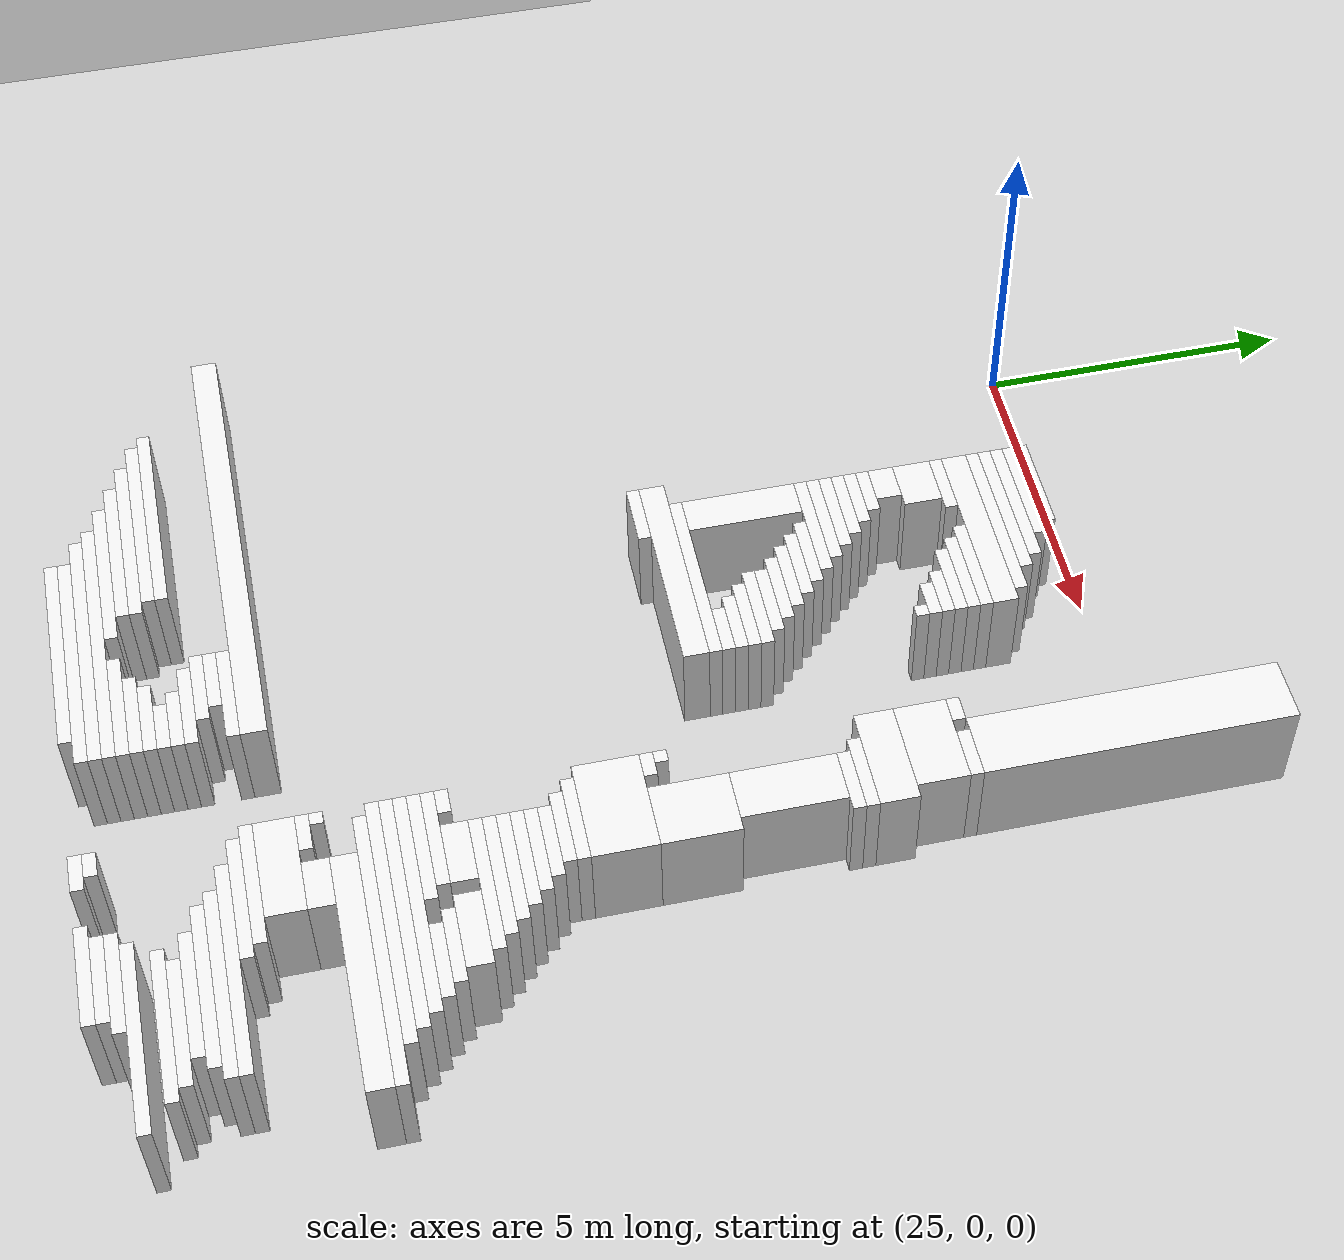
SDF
<sdf version="1.7">
 <world name="default">
  <model name="ground_plane">
   <static>1</static>
   <link name="link">
    <collision name="collision">
     <geometry><plane><normal>0 0 1</normal><size>120 120</size></plane></geometry>
    </collision>
    <visual name="visual">
     <geometry><plane><normal>0 0 1</normal><size>120 120</size></plane></geometry>
     <material>
      <script><uri>file://media/materials/scripts/gazebo.material</uri><name>Gazebo/Grey</name></script>
     </material>
    </visual>
   </link>
  </model>
  <model name="random_complex_01_model">
   <static>1</static>
   <link name="obs_1866">
    <pose>28.6000 -0.5000 0.8000 0 0 0</pose>
    <collision name="obs_1866_col"><geometry><box><size>1.6000 0.2000 1.6000</size></box></geometry></collision>
    <visual name="obs_1866_vis">
     <geometry><box><size>1.6000 0.2000 1.6000</size></box></geometry>
     <material>
      <script><uri>file://media/materials/scripts/gazebo.material</uri><name>Gazebo/White</name></script>
     </material>
    </visual>
   </link>
   <link name="obs_1874">
    <pose>28.7000 -0.7000 0.8000 0 0 0</pose>
    <collision name="obs_1874_col"><geometry><box><size>1.8000 0.2000 1.6000</size></box></geometry></collision>
    <visual name="obs_1874_vis">
     <geometry><box><size>1.8000 0.2000 1.6000</size></box></geometry>
     <material>
      <script><uri>file://media/materials/scripts/gazebo.material</uri><name>Gazebo/White</name></script>
     </material>
    </visual>
   </link>
   <link name="obs_1879">
    <pose>28.9000 -0.9000 0.8000 0 0 0</pose>
    <collision name="obs_1879_col"><geometry><box><size>2.2000 0.2000 1.6000</size></box></geometry></collision>
    <visual name="obs_1879_vis">
     <geometry><box><size>2.2000 0.2000 1.6000</size></box></geometry>
     <material>
      <script><uri>file://media/materials/scripts/gazebo.material</uri><name>Gazebo/White</name></script>
     </material>
    </visual>
   </link>
   <link name="obs_1886">
    <pose>29.0000 -1.1000 0.8000 0 0 0</pose>
    <collision name="obs_1886_col"><geometry><box><size>2.4000 0.2000 1.6000</size></box></geometry></collision>
    <visual name="obs_1886_vis">
     <geometry><box><size>2.4000 0.2000 1.6000</size></box></geometry>
     <material>
      <script><uri>file://media/materials/scripts/gazebo.material</uri><name>Gazebo/White</name></script>
     </material>
    </visual>
   </link>
   <link name="obs_1893">
    <pose>29.2000 -1.3000 0.8000 0 0 0</pose>
    <collision name="obs_1893_col"><geometry><box><size>2.8000 0.2000 1.6000</size></box></geometry></collision>
    <visual name="obs_1893_vis">
     <geometry><box><size>2.8000 0.2000 1.6000</size></box></geometry>
     <material>
      <script><uri>file://media/materials/scripts/gazebo.material</uri><name>Gazebo/White</name></script>
     </material>
    </visual>
   </link>
   <link name="obs_1902">
    <pose>29.3000 -1.6000 0.8000 0 0 0</pose>
    <collision name="obs_1902_col"><geometry><box><size>3.0000 0.4000 1.6000</size></box></geometry></collision>
    <visual name="obs_1902_vis">
     <geometry><box><size>3.0000 0.4000 1.6000</size></box></geometry>
     <material>
      <script><uri>file://media/materials/scripts/gazebo.material</uri><name>Gazebo/White</name></script>
     </material>
    </visual>
   </link>
   <link name="obs_1911">
    <pose>28.3000 -1.9000 0.8000 0 0 0</pose>
    <collision name="obs_1911_col"><geometry><box><size>1.0000 0.2000 1.6000</size></box></geometry></collision>
    <visual name="obs_1911_vis">
     <geometry><box><size>1.0000 0.2000 1.6000</size></box></geometry>
     <material>
      <script><uri>file://media/materials/scripts/gazebo.material</uri><name>Gazebo/White</name></script>
     </material>
    </visual>
   </link>
   <link name="obs_1912">
    <pose>30.0000 -1.9000 0.8000 0 0 0</pose>
    <collision name="obs_1912_col"><geometry><box><size>1.6000 0.2000 1.6000</size></box></geometry></collision>
    <visual name="obs_1912_vis">
     <geometry><box><size>1.6000 0.2000 1.6000</size></box></geometry>
     <material>
      <script><uri>file://media/materials/scripts/gazebo.material</uri><name>Gazebo/White</name></script>
     </material>
    </visual>
   </link>
   <link name="obs_1919">
    <pose>30.1000 -2.1000 0.8000 0 0 0</pose>
    <collision name="obs_1919_col"><geometry><box><size>1.4000 0.2000 1.6000</size></box></geometry></collision>
    <visual name="obs_1919_vis">
     <geometry><box><size>1.4000 0.2000 1.6000</size></box></geometry>
     <material>
      <script><uri>file://media/materials/scripts/gazebo.material</uri><name>Gazebo/White</name></script>
     </material>
    </visual>
   </link>
   <link name="obs_1927">
    <pose>30.2000 -2.3000 0.8000 0 0 0</pose>
    <collision name="obs_1927_col"><geometry><box><size>1.2000 0.2000 1.6000</size></box></geometry></collision>
    <visual name="obs_1927_vis">
     <geometry><box><size>1.2000 0.2000 1.6000</size></box></geometry>
     <material>
      <script><uri>file://media/materials/scripts/gazebo.material</uri><name>Gazebo/White</name></script>
     </material>
    </visual>
   </link>
   <link name="obs_1929">
    <pose>28.2000 -2.3000 0.8000 0 0 0</pose>
    <collision name="obs_1929_col"><geometry><box><size>0.8000 0.6000 1.6000</size></box></geometry></collision>
    <visual name="obs_1929_vis">
     <geometry><box><size>0.8000 0.6000 1.6000</size></box></geometry>
     <material>
      <script><uri>file://media/materials/scripts/gazebo.material</uri><name>Gazebo/White</name></script>
     </material>
    </visual>
   </link>
   <link name="obs_1934">
    <pose>30.4000 -2.5000 0.8000 0 0 0</pose>
    <collision name="obs_1934_col"><geometry><box><size>0.8000 0.2000 1.6000</size></box></geometry></collision>
    <visual name="obs_1934_vis">
     <geometry><box><size>0.8000 0.2000 1.6000</size></box></geometry>
     <material>
      <script><uri>file://media/materials/scripts/gazebo.material</uri><name>Gazebo/White</name></script>
     </material>
    </visual>
   </link>
   <link name="obs_1936">
    <pose>33.3000 -0.4000 0.8000 0 0 0</pose>
    <collision name="obs_1936_col"><geometry><box><size>1.0000 4.8000 1.6000</size></box></geometry></collision>
    <visual name="obs_1936_vis">
     <geometry><box><size>1.0000 4.8000 1.6000</size></box></geometry>
     <material>
      <script><uri>file://media/materials/scripts/gazebo.material</uri><name>Gazebo/White</name></script>
     </material>
    </visual>
   </link>
   <link name="obs_1942">
    <pose>30.5000 -2.7000 0.8000 0 0 0</pose>
    <collision name="obs_1942_col"><geometry><box><size>0.6000 0.2000 1.6000</size></box></geometry></collision>
    <visual name="obs_1942_vis">
     <geometry><box><size>0.6000 0.2000 1.6000</size></box></geometry>
     <material>
      <script><uri>file://media/materials/scripts/gazebo.material</uri><name>Gazebo/White</name></script>
     </material>
    </visual>
   </link>
   <link name="obs_1946">
    <pose>28.1000 -2.8000 0.8000 0 0 0</pose>
    <collision name="obs_1946_col"><geometry><box><size>0.6000 0.4000 1.6000</size></box></geometry></collision>
    <visual name="obs_1946_vis">
     <geometry><box><size>0.6000 0.4000 1.6000</size></box></geometry>
     <material>
      <script><uri>file://media/materials/scripts/gazebo.material</uri><name>Gazebo/White</name></script>
     </material>
    </visual>
   </link>
   <link name="obs_1952">
    <pose>30.7000 -2.9000 0.8000 0 0 0</pose>
    <collision name="obs_1952_col"><geometry><box><size>0.2000 0.2000 1.6000</size></box></geometry></collision>
    <visual name="obs_1952_vis">
     <geometry><box><size>0.2000 0.2000 1.6000</size></box></geometry>
     <material>
      <script><uri>file://media/materials/scripts/gazebo.material</uri><name>Gazebo/White</name></script>
     </material>
    </visual>
   </link>
   <link name="obs_1953">
    <pose>32.6000 -2.9000 0.8000 0 0 0</pose>
    <collision name="obs_1953_col"><geometry><box><size>0.4000 0.2000 1.6000</size></box></geometry></collision>
    <visual name="obs_1953_vis">
     <geometry><box><size>0.4000 0.2000 1.6000</size></box></geometry>
     <material>
      <script><uri>file://media/materials/scripts/gazebo.material</uri><name>Gazebo/White</name></script>
     </material>
    </visual>
   </link>
   <link name="obs_1954">
    <pose>33.4000 -2.9000 0.8000 0 0 0</pose>
    <collision name="obs_1954_col"><geometry><box><size>0.8000 0.2000 1.6000</size></box></geometry></collision>
    <visual name="obs_1954_vis">
     <geometry><box><size>0.8000 0.2000 1.6000</size></box></geometry>
     <material>
      <script><uri>file://media/materials/scripts/gazebo.material</uri><name>Gazebo/White</name></script>
     </material>
    </visual>
   </link>
   <link name="obs_1960">
    <pose>28.2000 -3.1000 0.8000 0 0 0</pose>
    <collision name="obs_1960_col"><geometry><box><size>0.8000 0.2000 1.6000</size></box></geometry></collision>
    <visual name="obs_1960_vis">
     <geometry><box><size>0.8000 0.2000 1.6000</size></box></geometry>
     <material>
      <script><uri>file://media/materials/scripts/gazebo.material</uri><name>Gazebo/White</name></script>
     </material>
    </visual>
   </link>
   <link name="obs_1965">
    <pose>28.3000 -3.3000 0.8000 0 0 0</pose>
    <collision name="obs_1965_col"><geometry><box><size>1.0000 0.2000 1.6000</size></box></geometry></collision>
    <visual name="obs_1965_vis">
     <geometry><box><size>1.0000 0.2000 1.6000</size></box></geometry>
     <material>
      <script><uri>file://media/materials/scripts/gazebo.material</uri><name>Gazebo/White</name></script>
     </material>
    </visual>
   </link>
   <link name="obs_1972">
    <pose>28.4000 -3.5000 0.8000 0 0 0</pose>
    <collision name="obs_1972_col"><geometry><box><size>1.2000 0.2000 1.6000</size></box></geometry></collision>
    <visual name="obs_1972_vis">
     <geometry><box><size>1.2000 0.2000 1.6000</size></box></geometry>
     <material>
      <script><uri>file://media/materials/scripts/gazebo.material</uri><name>Gazebo/White</name></script>
     </material>
    </visual>
   </link>
   <link name="obs_1976">
    <pose>33.1000 -3.4000 0.8000 0 0 0</pose>
    <collision name="obs_1976_col"><geometry><box><size>1.4000 0.8000 1.6000</size></box></geometry></collision>
    <visual name="obs_1976_vis">
     <geometry><box><size>1.4000 0.8000 1.6000</size></box></geometry>
     <material>
      <script><uri>file://media/materials/scripts/gazebo.material</uri><name>Gazebo/White</name></script>
     </material>
    </visual>
   </link>
   <link name="obs_1982">
    <pose>28.5000 -3.7000 0.8000 0 0 0</pose>
    <collision name="obs_1982_col"><geometry><box><size>1.4000 0.2000 1.6000</size></box></geometry></collision>
    <visual name="obs_1982_vis">
     <geometry><box><size>1.4000 0.2000 1.6000</size></box></geometry>
     <material>
      <script><uri>file://media/materials/scripts/gazebo.material</uri><name>Gazebo/White</name></script>
     </material>
    </visual>
   </link>
   <link name="obs_1992">
    <pose>28.6000 -3.9000 0.8000 0 0 0</pose>
    <collision name="obs_1992_col"><geometry><box><size>1.6000 0.2000 1.6000</size></box></geometry></collision>
    <visual name="obs_1992_vis">
     <geometry><box><size>1.6000 0.2000 1.6000</size></box></geometry>
     <material>
      <script><uri>file://media/materials/scripts/gazebo.material</uri><name>Gazebo/White</name></script>
     </material>
    </visual>
   </link>
   <link name="obs_2002">
    <pose>28.7000 -4.1000 0.8000 0 0 0</pose>
    <collision name="obs_2002_col"><geometry><box><size>1.8000 0.2000 1.6000</size></box></geometry></collision>
    <visual name="obs_2002_vis">
     <geometry><box><size>1.8000 0.2000 1.6000</size></box></geometry>
     <material>
      <script><uri>file://media/materials/scripts/gazebo.material</uri><name>Gazebo/White</name></script>
     </material>
    </visual>
   </link>
   <link name="obs_2005">
    <pose>33.2000 -4.1000 0.8000 0 0 0</pose>
    <collision name="obs_2005_col"><geometry><box><size>1.6000 0.6000 1.6000</size></box></geometry></collision>
    <visual name="obs_2005_vis">
     <geometry><box><size>1.6000 0.6000 1.6000</size></box></geometry>
     <material>
      <script><uri>file://media/materials/scripts/gazebo.material</uri><name>Gazebo/White</name></script>
     </material>
    </visual>
   </link>
   <link name="obs_2013">
    <pose>29.2000 -4.3000 0.8000 0 0 0</pose>
    <collision name="obs_2013_col"><geometry><box><size>1.2000 0.2000 1.6000</size></box></geometry></collision>
    <visual name="obs_2013_vis">
     <geometry><box><size>1.2000 0.2000 1.6000</size></box></geometry>
     <material>
      <script><uri>file://media/materials/scripts/gazebo.material</uri><name>Gazebo/White</name></script>
     </material>
    </visual>
   </link>
   <link name="obs_2024">
    <pose>29.4000 -4.5000 0.8000 0 0 0</pose>
    <collision name="obs_2024_col"><geometry><box><size>1.2000 0.2000 1.6000</size></box></geometry></collision>
    <visual name="obs_2024_vis">
     <geometry><box><size>1.2000 0.2000 1.6000</size></box></geometry>
     <material>
      <script><uri>file://media/materials/scripts/gazebo.material</uri><name>Gazebo/White</name></script>
     </material>
    </visual>
   </link>
   <link name="obs_2025">
    <pose>33.4000 -4.5000 0.8000 0 0 0</pose>
    <collision name="obs_2025_col"><geometry><box><size>1.2000 0.2000 1.6000</size></box></geometry></collision>
    <visual name="obs_2025_vis">
     <geometry><box><size>1.2000 0.2000 1.6000</size></box></geometry>
     <material>
      <script><uri>file://media/materials/scripts/gazebo.material</uri><name>Gazebo/White</name></script>
     </material>
    </visual>
   </link>
   <link name="obs_2033">
    <pose>29.6000 -4.7000 0.8000 0 0 0</pose>
    <collision name="obs_2033_col"><geometry><box><size>1.2000 0.2000 1.6000</size></box></geometry></collision>
    <visual name="obs_2033_vis">
     <geometry><box><size>1.2000 0.2000 1.6000</size></box></geometry>
     <material>
      <script><uri>file://media/materials/scripts/gazebo.material</uri><name>Gazebo/White</name></script>
     </material>
    </visual>
   </link>
   <link name="obs_2034">
    <pose>33.5000 -4.7000 0.8000 0 0 0</pose>
    <collision name="obs_2034_col"><geometry><box><size>1.0000 0.2000 1.6000</size></box></geometry></collision>
    <visual name="obs_2034_vis">
     <geometry><box><size>1.0000 0.2000 1.6000</size></box></geometry>
     <material>
      <script><uri>file://media/materials/scripts/gazebo.material</uri><name>Gazebo/White</name></script>
     </material>
    </visual>
   </link>
   <link name="obs_2040">
    <pose>29.8000 -4.9000 0.8000 0 0 0</pose>
    <collision name="obs_2040_col"><geometry><box><size>1.2000 0.2000 1.6000</size></box></geometry></collision>
    <visual name="obs_2040_vis">
     <geometry><box><size>1.2000 0.2000 1.6000</size></box></geometry>
     <material>
      <script><uri>file://media/materials/scripts/gazebo.material</uri><name>Gazebo/White</name></script>
     </material>
    </visual>
   </link>
   <link name="obs_2047">
    <pose>30.0000 -5.1000 0.8000 0 0 0</pose>
    <collision name="obs_2047_col"><geometry><box><size>1.2000 0.2000 1.6000</size></box></geometry></collision>
    <visual name="obs_2047_vis">
     <geometry><box><size>1.2000 0.2000 1.6000</size></box></geometry>
     <material>
      <script><uri>file://media/materials/scripts/gazebo.material</uri><name>Gazebo/White</name></script>
     </material>
    </visual>
   </link>
   <link name="obs_2053">
    <pose>30.1000 -5.3000 0.8000 0 0 0</pose>
    <collision name="obs_2053_col"><geometry><box><size>1.4000 0.2000 1.6000</size></box></geometry></collision>
    <visual name="obs_2053_vis">
     <geometry><box><size>1.4000 0.2000 1.6000</size></box></geometry>
     <material>
      <script><uri>file://media/materials/scripts/gazebo.material</uri><name>Gazebo/White</name></script>
     </material>
    </visual>
   </link>
   <link name="obs_2059">
    <pose>30.2000 -5.5000 0.8000 0 0 0</pose>
    <collision name="obs_2059_col"><geometry><box><size>1.2000 0.2000 1.6000</size></box></geometry></collision>
    <visual name="obs_2059_vis">
     <geometry><box><size>1.2000 0.2000 1.6000</size></box></geometry>
     <material>
      <script><uri>file://media/materials/scripts/gazebo.material</uri><name>Gazebo/White</name></script>
     </material>
    </visual>
   </link>
   <link name="obs_2068">
    <pose>30.3000 -5.7000 0.8000 0 0 0</pose>
    <collision name="obs_2068_col"><geometry><box><size>1.0000 0.2000 1.6000</size></box></geometry></collision>
    <visual name="obs_2068_vis">
     <geometry><box><size>1.0000 0.2000 1.6000</size></box></geometry>
     <material>
      <script><uri>file://media/materials/scripts/gazebo.material</uri><name>Gazebo/White</name></script>
     </material>
    </visual>
   </link>
   <link name="obs_2070">
    <pose>28.1000 -5.1000 0.8000 0 0 0</pose>
    <collision name="obs_2070_col"><geometry><box><size>0.6000 1.8000 1.6000</size></box></geometry></collision>
    <visual name="obs_2070_vis">
     <geometry><box><size>0.6000 1.8000 1.6000</size></box></geometry>
     <material>
      <script><uri>file://media/materials/scripts/gazebo.material</uri><name>Gazebo/White</name></script>
     </material>
    </visual>
   </link>
   <link name="obs_2078">
    <pose>30.4000 -5.9000 0.8000 0 0 0</pose>
    <collision name="obs_2078_col"><geometry><box><size>0.8000 0.2000 1.6000</size></box></geometry></collision>
    <visual name="obs_2078_vis">
     <geometry><box><size>0.8000 0.2000 1.6000</size></box></geometry>
     <material>
      <script><uri>file://media/materials/scripts/gazebo.material</uri><name>Gazebo/White</name></script>
     </material>
    </visual>
   </link>
   <link name="obs_2082">
    <pose>29.3000 -6.1000 0.8000 0 0 0</pose>
    <collision name="obs_2082_col"><geometry><box><size>3.0000 0.2000 1.6000</size></box></geometry></collision>
    <visual name="obs_2082_vis">
     <geometry><box><size>3.0000 0.2000 1.6000</size></box></geometry>
     <material>
      <script><uri>file://media/materials/scripts/gazebo.material</uri><name>Gazebo/White</name></script>
     </material>
    </visual>
   </link>
   <link name="obs_2084">
    <pose>33.4000 -5.6000 0.8000 0 0 0</pose>
    <collision name="obs_2084_col"><geometry><box><size>0.8000 1.6000 1.6000</size></box></geometry></collision>
    <visual name="obs_2084_vis">
     <geometry><box><size>0.8000 1.6000 1.6000</size></box></geometry>
     <material>
      <script><uri>file://media/materials/scripts/gazebo.material</uri><name>Gazebo/White</name></script>
     </material>
    </visual>
   </link>
   <link name="obs_2093">
    <pose>29.1000 -6.4000 0.8000 0 0 0</pose>
    <collision name="obs_2093_col"><geometry><box><size>3.4000 0.4000 1.6000</size></box></geometry></collision>
    <visual name="obs_2093_vis">
     <geometry><box><size>3.4000 0.4000 1.6000</size></box></geometry>
     <material>
      <script><uri>file://media/materials/scripts/gazebo.material</uri><name>Gazebo/White</name></script>
     </material>
    </visual>
   </link>
   <link name="obs_2107">
    <pose>27.9000 -6.7000 0.8000 0 0 0</pose>
    <collision name="obs_2107_col"><geometry><box><size>1.0000 0.2000 1.6000</size></box></geometry></collision>
    <visual name="obs_2107_vis">
     <geometry><box><size>1.0000 0.2000 1.6000</size></box></geometry>
     <material>
      <script><uri>file://media/materials/scripts/gazebo.material</uri><name>Gazebo/White</name></script>
     </material>
    </visual>
   </link>
   <link name="obs_2134">
    <pose>32.5000 -7.3000 0.8000 0 0 0</pose>
    <collision name="obs_2134_col"><geometry><box><size>0.2000 0.2000 1.6000</size></box></geometry></collision>
    <visual name="obs_2134_vis">
     <geometry><box><size>0.2000 0.2000 1.6000</size></box></geometry>
     <material>
      <script><uri>file://media/materials/scripts/gazebo.material</uri><name>Gazebo/White</name></script>
     </material>
    </visual>
   </link>
   <link name="obs_2136">
    <pose>33.5000 -7.0000 0.8000 0 0 0</pose>
    <collision name="obs_2136_col"><geometry><box><size>1.0000 1.2000 1.6000</size></box></geometry></collision>
    <visual name="obs_2136_vis">
     <geometry><box><size>1.0000 1.2000 1.6000</size></box></geometry>
     <material>
      <script><uri>file://media/materials/scripts/gazebo.material</uri><name>Gazebo/White</name></script>
     </material>
    </visual>
   </link>
   <link name="obs_2141">
    <pose>32.6000 -7.5000 0.8000 0 0 0</pose>
    <collision name="obs_2141_col"><geometry><box><size>0.4000 0.2000 1.6000</size></box></geometry></collision>
    <visual name="obs_2141_vis">
     <geometry><box><size>0.4000 0.2000 1.6000</size></box></geometry>
     <material>
      <script><uri>file://media/materials/scripts/gazebo.material</uri><name>Gazebo/White</name></script>
     </material>
    </visual>
   </link>
   <link name="obs_2168">
    <pose>33.2000 -8.1000 0.8000 0 0 0</pose>
    <collision name="obs_2168_col"><geometry><box><size>1.6000 1.0000 1.6000</size></box></geometry></collision>
    <visual name="obs_2168_vis">
     <geometry><box><size>1.6000 1.0000 1.6000</size></box></geometry>
     <material>
      <script><uri>file://media/materials/scripts/gazebo.material</uri><name>Gazebo/White</name></script>
     </material>
    </visual>
   </link>
   <link name="obs_2182">
    <pose>33.3000 -8.7000 0.8000 0 0 0</pose>
    <collision name="obs_2182_col"><geometry><box><size>1.4000 0.2000 1.6000</size></box></geometry></collision>
    <visual name="obs_2182_vis">
     <geometry><box><size>1.4000 0.2000 1.6000</size></box></geometry>
     <material>
      <script><uri>file://media/materials/scripts/gazebo.material</uri><name>Gazebo/White</name></script>
     </material>
    </visual>
   </link>
   <link name="obs_2188">
    <pose>33.4000 -8.9000 0.8000 0 0 0</pose>
    <collision name="obs_2188_col"><geometry><box><size>1.2000 0.2000 1.6000</size></box></geometry></collision>
    <visual name="obs_2188_vis">
     <geometry><box><size>1.2000 0.2000 1.6000</size></box></geometry>
     <material>
      <script><uri>file://media/materials/scripts/gazebo.material</uri><name>Gazebo/White</name></script>
     </material>
    </visual>
   </link>
   <link name="obs_2193">
    <pose>33.6000 -9.1000 0.8000 0 0 0</pose>
    <collision name="obs_2193_col"><geometry><box><size>1.2000 0.2000 1.6000</size></box></geometry></collision>
    <visual name="obs_2193_vis">
     <geometry><box><size>1.2000 0.2000 1.6000</size></box></geometry>
     <material>
      <script><uri>file://media/materials/scripts/gazebo.material</uri><name>Gazebo/White</name></script>
     </material>
    </visual>
   </link>
   <link name="obs_2199">
    <pose>33.7000 -9.3000 0.8000 0 0 0</pose>
    <collision name="obs_2199_col"><geometry><box><size>1.4000 0.2000 1.6000</size></box></geometry></collision>
    <visual name="obs_2199_vis">
     <geometry><box><size>1.4000 0.2000 1.6000</size></box></geometry>
     <material>
      <script><uri>file://media/materials/scripts/gazebo.material</uri><name>Gazebo/White</name></script>
     </material>
    </visual>
   </link>
   <link name="obs_2206">
    <pose>33.8000 -9.5000 0.8000 0 0 0</pose>
    <collision name="obs_2206_col"><geometry><box><size>1.6000 0.2000 1.6000</size></box></geometry></collision>
    <visual name="obs_2206_vis">
     <geometry><box><size>1.6000 0.2000 1.6000</size></box></geometry>
     <material>
      <script><uri>file://media/materials/scripts/gazebo.material</uri><name>Gazebo/White</name></script>
     </material>
    </visual>
   </link>
   <link name="obs_2212">
    <pose>33.9000 -9.7000 0.8000 0 0 0</pose>
    <collision name="obs_2212_col"><geometry><box><size>1.8000 0.2000 1.6000</size></box></geometry></collision>
    <visual name="obs_2212_vis">
     <geometry><box><size>1.8000 0.2000 1.6000</size></box></geometry>
     <material>
      <script><uri>file://media/materials/scripts/gazebo.material</uri><name>Gazebo/White</name></script>
     </material>
    </visual>
   </link>
   <link name="obs_2218">
    <pose>34.0000 -9.9000 0.8000 0 0 0</pose>
    <collision name="obs_2218_col"><geometry><box><size>2.0000 0.2000 1.6000</size></box></geometry></collision>
    <visual name="obs_2218_vis">
     <geometry><box><size>2.0000 0.2000 1.6000</size></box></geometry>
     <material>
      <script><uri>file://media/materials/scripts/gazebo.material</uri><name>Gazebo/White</name></script>
     </material>
    </visual>
   </link>
   <link name="obs_2224">
    <pose>34.1000 -10.1000 0.8000 0 0 0</pose>
    <collision name="obs_2224_col"><geometry><box><size>2.2000 0.2000 1.6000</size></box></geometry></collision>
    <visual name="obs_2224_vis">
     <geometry><box><size>2.2000 0.2000 1.6000</size></box></geometry>
     <material>
      <script><uri>file://media/materials/scripts/gazebo.material</uri><name>Gazebo/White</name></script>
     </material>
    </visual>
   </link>
   <link name="obs_2231">
    <pose>33.5000 -10.4000 0.8000 0 0 0</pose>
    <collision name="obs_2231_col"><geometry><box><size>1.0000 0.4000 1.6000</size></box></geometry></collision>
    <visual name="obs_2231_vis">
     <geometry><box><size>1.0000 0.4000 1.6000</size></box></geometry>
     <material>
      <script><uri>file://media/materials/scripts/gazebo.material</uri><name>Gazebo/White</name></script>
     </material>
    </visual>
   </link>
   <link name="obs_2232">
    <pose>34.8000 -10.4000 0.8000 0 0 0</pose>
    <collision name="obs_2232_col"><geometry><box><size>1.2000 0.4000 1.6000</size></box></geometry></collision>
    <visual name="obs_2232_vis">
     <geometry><box><size>1.2000 0.4000 1.6000</size></box></geometry>
     <material>
      <script><uri>file://media/materials/scripts/gazebo.material</uri><name>Gazebo/White</name></script>
     </material>
    </visual>
   </link>
   <link name="obs_2236">
    <pose>32.6000 -10.5000 0.8000 0 0 0</pose>
    <collision name="obs_2236_col"><geometry><box><size>0.4000 0.2000 1.6000</size></box></geometry></collision>
    <visual name="obs_2236_vis">
     <geometry><box><size>0.4000 0.2000 1.6000</size></box></geometry>
     <material>
      <script><uri>file://media/materials/scripts/gazebo.material</uri><name>Gazebo/White</name></script>
     </material>
    </visual>
   </link>
   <link name="obs_2242">
    <pose>33.2000 -10.7000 0.8000 0 0 0</pose>
    <collision name="obs_2242_col"><geometry><box><size>1.6000 0.2000 1.6000</size></box></geometry></collision>
    <visual name="obs_2242_vis">
     <geometry><box><size>1.6000 0.2000 1.6000</size></box></geometry>
     <material>
      <script><uri>file://media/materials/scripts/gazebo.material</uri><name>Gazebo/White</name></script>
     </material>
    </visual>
   </link>
   <link name="obs_2243">
    <pose>35.0000 -10.7000 0.8000 0 0 0</pose>
    <collision name="obs_2243_col"><geometry><box><size>1.2000 0.2000 1.6000</size></box></geometry></collision>
    <visual name="obs_2243_vis">
     <geometry><box><size>1.2000 0.2000 1.6000</size></box></geometry>
     <material>
      <script><uri>file://media/materials/scripts/gazebo.material</uri><name>Gazebo/White</name></script>
     </material>
    </visual>
   </link>
   <link name="obs_2251">
    <pose>33.3000 -10.9000 0.8000 0 0 0</pose>
    <collision name="obs_2251_col"><geometry><box><size>1.8000 0.2000 1.6000</size></box></geometry></collision>
    <visual name="obs_2251_vis">
     <geometry><box><size>1.8000 0.2000 1.6000</size></box></geometry>
     <material>
      <script><uri>file://media/materials/scripts/gazebo.material</uri><name>Gazebo/White</name></script>
     </material>
    </visual>
   </link>
   <link name="obs_2252">
    <pose>35.2000 -10.9000 0.8000 0 0 0</pose>
    <collision name="obs_2252_col"><geometry><box><size>1.2000 0.2000 1.6000</size></box></geometry></collision>
    <visual name="obs_2252_vis">
     <geometry><box><size>1.2000 0.2000 1.6000</size></box></geometry>
     <material>
      <script><uri>file://media/materials/scripts/gazebo.material</uri><name>Gazebo/White</name></script>
     </material>
    </visual>
   </link>
   <link name="obs_2260">
    <pose>34.2000 -11.1000 0.8000 0 0 0</pose>
    <collision name="obs_2260_col"><geometry><box><size>3.6000 0.2000 1.6000</size></box></geometry></collision>
    <visual name="obs_2260_vis">
     <geometry><box><size>3.6000 0.2000 1.6000</size></box></geometry>
     <material>
      <script><uri>file://media/materials/scripts/gazebo.material</uri><name>Gazebo/White</name></script>
     </material>
    </visual>
   </link>
   <link name="obs_2264">
    <pose>34.3000 -11.3000 0.8000 0 0 0</pose>
    <collision name="obs_2264_col"><geometry><box><size>3.8000 0.2000 1.6000</size></box></geometry></collision>
    <visual name="obs_2264_vis">
     <geometry><box><size>3.8000 0.2000 1.6000</size></box></geometry>
     <material>
      <script><uri>file://media/materials/scripts/gazebo.material</uri><name>Gazebo/White</name></script>
     </material>
    </visual>
   </link>
   <link name="obs_2269">
    <pose>34.4000 -11.5000 0.8000 0 0 0</pose>
    <collision name="obs_2269_col"><geometry><box><size>4.0000 0.2000 1.6000</size></box></geometry></collision>
    <visual name="obs_2269_vis">
     <geometry><box><size>4.0000 0.2000 1.6000</size></box></geometry>
     <material>
      <script><uri>file://media/materials/scripts/gazebo.material</uri><name>Gazebo/White</name></script>
     </material>
    </visual>
   </link>
   <link name="obs_2277">
    <pose>34.8000 -11.7000 0.8000 0 0 0</pose>
    <collision name="obs_2277_col"><geometry><box><size>4.4000 0.2000 1.6000</size></box></geometry></collision>
    <visual name="obs_2277_vis">
     <geometry><box><size>4.4000 0.2000 1.6000</size></box></geometry>
     <material>
      <script><uri>file://media/materials/scripts/gazebo.material</uri><name>Gazebo/White</name></script>
     </material>
    </visual>
   </link>
   <link name="obs_2287">
    <pose>35.1000 -12.0000 0.8000 0 0 0</pose>
    <collision name="obs_2287_col"><geometry><box><size>3.8000 0.4000 1.6000</size></box></geometry></collision>
    <visual name="obs_2287_vis">
     <geometry><box><size>3.8000 0.4000 1.6000</size></box></geometry>
     <material>
      <script><uri>file://media/materials/scripts/gazebo.material</uri><name>Gazebo/White</name></script>
     </material>
    </visual>
   </link>
   <link name="obs_2293">
    <pose>32.5000 -12.3000 0.8000 0 0 0</pose>
    <collision name="obs_2293_col"><geometry><box><size>0.2000 0.2000 1.6000</size></box></geometry></collision>
    <visual name="obs_2293_vis">
     <geometry><box><size>0.2000 0.2000 1.6000</size></box></geometry>
     <material>
      <script><uri>file://media/materials/scripts/gazebo.material</uri><name>Gazebo/White</name></script>
     </material>
    </visual>
   </link>
   <link name="obs_2301">
    <pose>33.6000 -12.4000 0.8000 0 0 0</pose>
    <collision name="obs_2301_col"><geometry><box><size>0.8000 0.4000 1.6000</size></box></geometry></collision>
    <visual name="obs_2301_vis">
     <geometry><box><size>0.8000 0.4000 1.6000</size></box></geometry>
     <material>
      <script><uri>file://media/materials/scripts/gazebo.material</uri><name>Gazebo/White</name></script>
     </material>
    </visual>
   </link>
   <link name="obs_2304">
    <pose>32.7000 -12.5000 0.8000 0 0 0</pose>
    <collision name="obs_2304_col"><geometry><box><size>0.6000 0.2000 1.6000</size></box></geometry></collision>
    <visual name="obs_2304_vis">
     <geometry><box><size>0.6000 0.2000 1.6000</size></box></geometry>
     <material>
      <script><uri>file://media/materials/scripts/gazebo.material</uri><name>Gazebo/White</name></script>
     </material>
    </visual>
   </link>
   <link name="obs_2318">
    <pose>33.2000 -12.9000 0.8000 0 0 0</pose>
    <collision name="obs_2318_col"><geometry><box><size>1.6000 0.6000 1.6000</size></box></geometry></collision>
    <visual name="obs_2318_vis">
     <geometry><box><size>1.6000 0.6000 1.6000</size></box></geometry>
     <material>
      <script><uri>file://media/materials/scripts/gazebo.material</uri><name>Gazebo/White</name></script>
     </material>
    </visual>
   </link>
   <link name="obs_2321">
    <pose>27.0000 -13.0000 0.8000 0 0 0</pose>
    <collision name="obs_2321_col"><geometry><box><size>7.6000 0.4000 1.6000</size></box></geometry></collision>
    <visual name="obs_2321_vis">
     <geometry><box><size>7.6000 0.4000 1.6000</size></box></geometry>
     <material>
      <script><uri>file://media/materials/scripts/gazebo.material</uri><name>Gazebo/White</name></script>
     </material>
    </visual>
   </link>
   <link name="obs_2327">
    <pose>30.0000 -13.3000 0.8000 0 0 0</pose>
    <collision name="obs_2327_col"><geometry><box><size>1.6000 0.2000 1.6000</size></box></geometry></collision>
    <visual name="obs_2327_vis">
     <geometry><box><size>1.6000 0.2000 1.6000</size></box></geometry>
     <material>
      <script><uri>file://media/materials/scripts/gazebo.material</uri><name>Gazebo/White</name></script>
     </material>
    </visual>
   </link>
   <link name="obs_2328">
    <pose>33.4000 -13.3000 0.8000 0 0 0</pose>
    <collision name="obs_2328_col"><geometry><box><size>2.0000 0.2000 1.6000</size></box></geometry></collision>
    <visual name="obs_2328_vis">
     <geometry><box><size>2.0000 0.2000 1.6000</size></box></geometry>
     <material>
      <script><uri>file://media/materials/scripts/gazebo.material</uri><name>Gazebo/White</name></script>
     </material>
    </visual>
   </link>
   <link name="obs_2335">
    <pose>29.7000 -13.5000 0.8000 0 0 0</pose>
    <collision name="obs_2335_col"><geometry><box><size>1.0000 0.2000 1.6000</size></box></geometry></collision>
    <visual name="obs_2335_vis">
     <geometry><box><size>1.0000 0.2000 1.6000</size></box></geometry>
     <material>
      <script><uri>file://media/materials/scripts/gazebo.material</uri><name>Gazebo/White</name></script>
     </material>
    </visual>
   </link>
   <link name="obs_2336">
    <pose>33.6000 -13.5000 0.8000 0 0 0</pose>
    <collision name="obs_2336_col"><geometry><box><size>2.0000 0.2000 1.6000</size></box></geometry></collision>
    <visual name="obs_2336_vis">
     <geometry><box><size>2.0000 0.2000 1.6000</size></box></geometry>
     <material>
      <script><uri>file://media/materials/scripts/gazebo.material</uri><name>Gazebo/White</name></script>
     </material>
    </visual>
   </link>
   <link name="obs_2343">
    <pose>29.8000 -13.7000 0.8000 0 0 0</pose>
    <collision name="obs_2343_col"><geometry><box><size>1.2000 0.2000 1.6000</size></box></geometry></collision>
    <visual name="obs_2343_vis">
     <geometry><box><size>1.2000 0.2000 1.6000</size></box></geometry>
     <material>
      <script><uri>file://media/materials/scripts/gazebo.material</uri><name>Gazebo/White</name></script>
     </material>
    </visual>
   </link>
   <link name="obs_2344">
    <pose>34.7000 -13.7000 0.8000 0 0 0</pose>
    <collision name="obs_2344_col"><geometry><box><size>3.4000 0.2000 1.6000</size></box></geometry></collision>
    <visual name="obs_2344_vis">
     <geometry><box><size>3.4000 0.2000 1.6000</size></box></geometry>
     <material>
      <script><uri>file://media/materials/scripts/gazebo.material</uri><name>Gazebo/White</name></script>
     </material>
    </visual>
   </link>
   <link name="obs_2350">
    <pose>30.1000 -13.9000 0.8000 0 0 0</pose>
    <collision name="obs_2350_col"><geometry><box><size>1.4000 0.2000 1.6000</size></box></geometry></collision>
    <visual name="obs_2350_vis">
     <geometry><box><size>1.4000 0.2000 1.6000</size></box></geometry>
     <material>
      <script><uri>file://media/materials/scripts/gazebo.material</uri><name>Gazebo/White</name></script>
     </material>
    </visual>
   </link>
   <link name="obs_2351">
    <pose>34.9000 -13.9000 0.8000 0 0 0</pose>
    <collision name="obs_2351_col"><geometry><box><size>3.0000 0.2000 1.6000</size></box></geometry></collision>
    <visual name="obs_2351_vis">
     <geometry><box><size>3.0000 0.2000 1.6000</size></box></geometry>
     <material>
      <script><uri>file://media/materials/scripts/gazebo.material</uri><name>Gazebo/White</name></script>
     </material>
    </visual>
   </link>
   <link name="obs_2355">
    <pose>26.3000 -14.1000 0.8000 0 0 0</pose>
    <collision name="obs_2355_col"><geometry><box><size>3.4000 0.2000 1.6000</size></box></geometry></collision>
    <visual name="obs_2355_vis">
     <geometry><box><size>3.4000 0.2000 1.6000</size></box></geometry>
     <material>
      <script><uri>file://media/materials/scripts/gazebo.material</uri><name>Gazebo/White</name></script>
     </material>
    </visual>
   </link>
   <link name="obs_2356">
    <pose>30.3000 -14.1000 0.8000 0 0 0</pose>
    <collision name="obs_2356_col"><geometry><box><size>1.0000 0.2000 1.6000</size></box></geometry></collision>
    <visual name="obs_2356_vis">
     <geometry><box><size>1.0000 0.2000 1.6000</size></box></geometry>
     <material>
      <script><uri>file://media/materials/scripts/gazebo.material</uri><name>Gazebo/White</name></script>
     </material>
    </visual>
   </link>
   <link name="obs_2357">
    <pose>34.9000 -14.1000 0.8000 0 0 0</pose>
    <collision name="obs_2357_col"><geometry><box><size>2.6000 0.2000 1.6000</size></box></geometry></collision>
    <visual name="obs_2357_vis">
     <geometry><box><size>2.6000 0.2000 1.6000</size></box></geometry>
     <material>
      <script><uri>file://media/materials/scripts/gazebo.material</uri><name>Gazebo/White</name></script>
     </material>
    </visual>
   </link>
   <link name="obs_2362">
    <pose>26.4000 -14.3000 0.8000 0 0 0</pose>
    <collision name="obs_2362_col"><geometry><box><size>3.2000 0.2000 1.6000</size></box></geometry></collision>
    <visual name="obs_2362_vis">
     <geometry><box><size>3.2000 0.2000 1.6000</size></box></geometry>
     <material>
      <script><uri>file://media/materials/scripts/gazebo.material</uri><name>Gazebo/White</name></script>
     </material>
    </visual>
   </link>
   <link name="obs_2363">
    <pose>30.4000 -14.3000 0.8000 0 0 0</pose>
    <collision name="obs_2363_col"><geometry><box><size>0.8000 0.2000 1.6000</size></box></geometry></collision>
    <visual name="obs_2363_vis">
     <geometry><box><size>0.8000 0.2000 1.6000</size></box></geometry>
     <material>
      <script><uri>file://media/materials/scripts/gazebo.material</uri><name>Gazebo/White</name></script>
     </material>
    </visual>
   </link>
   <link name="obs_2364">
    <pose>35.0000 -14.3000 0.8000 0 0 0</pose>
    <collision name="obs_2364_col"><geometry><box><size>2.0000 0.2000 1.6000</size></box></geometry></collision>
    <visual name="obs_2364_vis">
     <geometry><box><size>2.0000 0.2000 1.6000</size></box></geometry>
     <material>
      <script><uri>file://media/materials/scripts/gazebo.material</uri><name>Gazebo/White</name></script>
     </material>
    </visual>
   </link>
   <link name="obs_2369">
    <pose>26.7000 -14.5000 0.8000 0 0 0</pose>
    <collision name="obs_2369_col"><geometry><box><size>3.0000 0.2000 1.6000</size></box></geometry></collision>
    <visual name="obs_2369_vis">
     <geometry><box><size>3.0000 0.2000 1.6000</size></box></geometry>
     <material>
      <script><uri>file://media/materials/scripts/gazebo.material</uri><name>Gazebo/White</name></script>
     </material>
    </visual>
   </link>
   <link name="obs_2370">
    <pose>30.2000 -14.5000 0.8000 0 0 0</pose>
    <collision name="obs_2370_col"><geometry><box><size>1.2000 0.2000 1.6000</size></box></geometry></collision>
    <visual name="obs_2370_vis">
     <geometry><box><size>1.2000 0.2000 1.6000</size></box></geometry>
     <material>
      <script><uri>file://media/materials/scripts/gazebo.material</uri><name>Gazebo/White</name></script>
     </material>
    </visual>
   </link>
   <link name="obs_2371">
    <pose>35.4000 -14.5000 0.8000 0 0 0</pose>
    <collision name="obs_2371_col"><geometry><box><size>2.0000 0.2000 1.6000</size></box></geometry></collision>
    <visual name="obs_2371_vis">
     <geometry><box><size>2.0000 0.2000 1.6000</size></box></geometry>
     <material>
      <script><uri>file://media/materials/scripts/gazebo.material</uri><name>Gazebo/White</name></script>
     </material>
    </visual>
   </link>
   <link name="obs_2378">
    <pose>26.9000 -14.7000 0.8000 0 0 0</pose>
    <collision name="obs_2378_col"><geometry><box><size>2.6000 0.2000 1.6000</size></box></geometry></collision>
    <visual name="obs_2378_vis">
     <geometry><box><size>2.6000 0.2000 1.6000</size></box></geometry>
     <material>
      <script><uri>file://media/materials/scripts/gazebo.material</uri><name>Gazebo/White</name></script>
     </material>
    </visual>
   </link>
   <link name="obs_2379">
    <pose>30.1000 -14.7000 0.8000 0 0 0</pose>
    <collision name="obs_2379_col"><geometry><box><size>1.4000 0.2000 1.6000</size></box></geometry></collision>
    <visual name="obs_2379_vis">
     <geometry><box><size>1.4000 0.2000 1.6000</size></box></geometry>
     <material>
      <script><uri>file://media/materials/scripts/gazebo.material</uri><name>Gazebo/White</name></script>
     </material>
    </visual>
   </link>
   <link name="obs_2380">
    <pose>35.4000 -14.7000 0.8000 0 0 0</pose>
    <collision name="obs_2380_col"><geometry><box><size>2.4000 0.2000 1.6000</size></box></geometry></collision>
    <visual name="obs_2380_vis">
     <geometry><box><size>2.4000 0.2000 1.6000</size></box></geometry>
     <material>
      <script><uri>file://media/materials/scripts/gazebo.material</uri><name>Gazebo/White</name></script>
     </material>
    </visual>
   </link>
   <link name="obs_2389">
    <pose>27.3000 -14.9000 0.8000 0 0 0</pose>
    <collision name="obs_2389_col"><geometry><box><size>2.6000 0.2000 1.6000</size></box></geometry></collision>
    <visual name="obs_2389_vis">
     <geometry><box><size>2.6000 0.2000 1.6000</size></box></geometry>
     <material>
      <script><uri>file://media/materials/scripts/gazebo.material</uri><name>Gazebo/White</name></script>
     </material>
    </visual>
   </link>
   <link name="obs_2390">
    <pose>29.9000 -14.9000 0.8000 0 0 0</pose>
    <collision name="obs_2390_col"><geometry><box><size>1.8000 0.2000 1.6000</size></box></geometry></collision>
    <visual name="obs_2390_vis">
     <geometry><box><size>1.8000 0.2000 1.6000</size></box></geometry>
     <material>
      <script><uri>file://media/materials/scripts/gazebo.material</uri><name>Gazebo/White</name></script>
     </material>
    </visual>
   </link>
   <link name="obs_2403">
    <pose>28.6000 -15.1000 0.8000 0 0 0</pose>
    <collision name="obs_2403_col"><geometry><box><size>4.4000 0.2000 1.6000</size></box></geometry></collision>
    <visual name="obs_2403_vis">
     <geometry><box><size>4.4000 0.2000 1.6000</size></box></geometry>
     <material>
      <script><uri>file://media/materials/scripts/gazebo.material</uri><name>Gazebo/White</name></script>
     </material>
    </visual>
   </link>
   <link name="obs_2404">
    <pose>35.5000 -15.1000 0.8000 0 0 0</pose>
    <collision name="obs_2404_col"><geometry><box><size>3.0000 0.2000 1.6000</size></box></geometry></collision>
    <visual name="obs_2404_vis">
     <geometry><box><size>3.0000 0.2000 1.6000</size></box></geometry>
     <material>
      <script><uri>file://media/materials/scripts/gazebo.material</uri><name>Gazebo/White</name></script>
     </material>
    </visual>
   </link>
   <link name="obs_2415">
    <pose>28.7000 -15.3000 0.8000 0 0 0</pose>
    <collision name="obs_2415_col"><geometry><box><size>4.2000 0.2000 1.6000</size></box></geometry></collision>
    <visual name="obs_2415_vis">
     <geometry><box><size>4.2000 0.2000 1.6000</size></box></geometry>
     <material>
      <script><uri>file://media/materials/scripts/gazebo.material</uri><name>Gazebo/White</name></script>
     </material>
    </visual>
   </link>
   <link name="obs_2416">
    <pose>34.6000 -15.3000 0.8000 0 0 0</pose>
    <collision name="obs_2416_col"><geometry><box><size>1.6000 0.2000 1.6000</size></box></geometry></collision>
    <visual name="obs_2416_vis">
     <geometry><box><size>1.6000 0.2000 1.6000</size></box></geometry>
     <material>
      <script><uri>file://media/materials/scripts/gazebo.material</uri><name>Gazebo/White</name></script>
     </material>
    </visual>
   </link>
   <link name="obs_2423">
    <pose>28.9000 -15.5000 0.8000 0 0 0</pose>
    <collision name="obs_2423_col"><geometry><box><size>3.8000 0.2000 1.6000</size></box></geometry></collision>
    <visual name="obs_2423_vis">
     <geometry><box><size>3.8000 0.2000 1.6000</size></box></geometry>
     <material>
      <script><uri>file://media/materials/scripts/gazebo.material</uri><name>Gazebo/White</name></script>
     </material>
    </visual>
   </link>
   <link name="obs_2424">
    <pose>32.6000 -15.5000 0.8000 0 0 0</pose>
    <collision name="obs_2424_col"><geometry><box><size>0.4000 0.2000 1.6000</size></box></geometry></collision>
    <visual name="obs_2424_vis">
     <geometry><box><size>0.4000 0.2000 1.6000</size></box></geometry>
     <material>
      <script><uri>file://media/materials/scripts/gazebo.material</uri><name>Gazebo/White</name></script>
     </material>
    </visual>
   </link>
   <link name="obs_2425">
    <pose>34.5000 -15.5000 0.8000 0 0 0</pose>
    <collision name="obs_2425_col"><geometry><box><size>1.4000 0.2000 1.6000</size></box></geometry></collision>
    <visual name="obs_2425_vis">
     <geometry><box><size>1.4000 0.2000 1.6000</size></box></geometry>
     <material>
      <script><uri>file://media/materials/scripts/gazebo.material</uri><name>Gazebo/White</name></script>
     </material>
    </visual>
   </link>
   <link name="obs_2434">
    <pose>28.7000 -15.7000 0.8000 0 0 0</pose>
    <collision name="obs_2434_col"><geometry><box><size>3.4000 0.2000 1.6000</size></box></geometry></collision>
    <visual name="obs_2434_vis">
     <geometry><box><size>3.4000 0.2000 1.6000</size></box></geometry>
     <material>
      <script><uri>file://media/materials/scripts/gazebo.material</uri><name>Gazebo/White</name></script>
     </material>
    </visual>
   </link>
   <link name="obs_2435">
    <pose>32.7000 -15.7000 0.8000 0 0 0</pose>
    <collision name="obs_2435_col"><geometry><box><size>0.6000 0.2000 1.6000</size></box></geometry></collision>
    <visual name="obs_2435_vis">
     <geometry><box><size>0.6000 0.2000 1.6000</size></box></geometry>
     <material>
      <script><uri>file://media/materials/scripts/gazebo.material</uri><name>Gazebo/White</name></script>
     </material>
    </visual>
   </link>
   <link name="obs_2436">
    <pose>34.4000 -15.7000 0.8000 0 0 0</pose>
    <collision name="obs_2436_col"><geometry><box><size>1.6000 0.2000 1.6000</size></box></geometry></collision>
    <visual name="obs_2436_vis">
     <geometry><box><size>1.6000 0.2000 1.6000</size></box></geometry>
     <material>
      <script><uri>file://media/materials/scripts/gazebo.material</uri><name>Gazebo/White</name></script>
     </material>
    </visual>
   </link>
  </model>
 </world>
</sdf>
